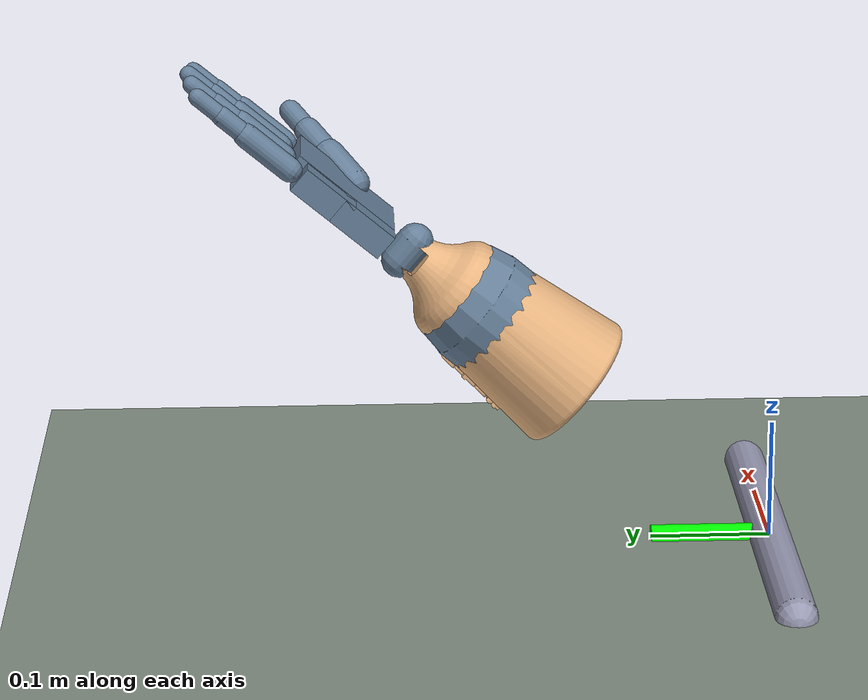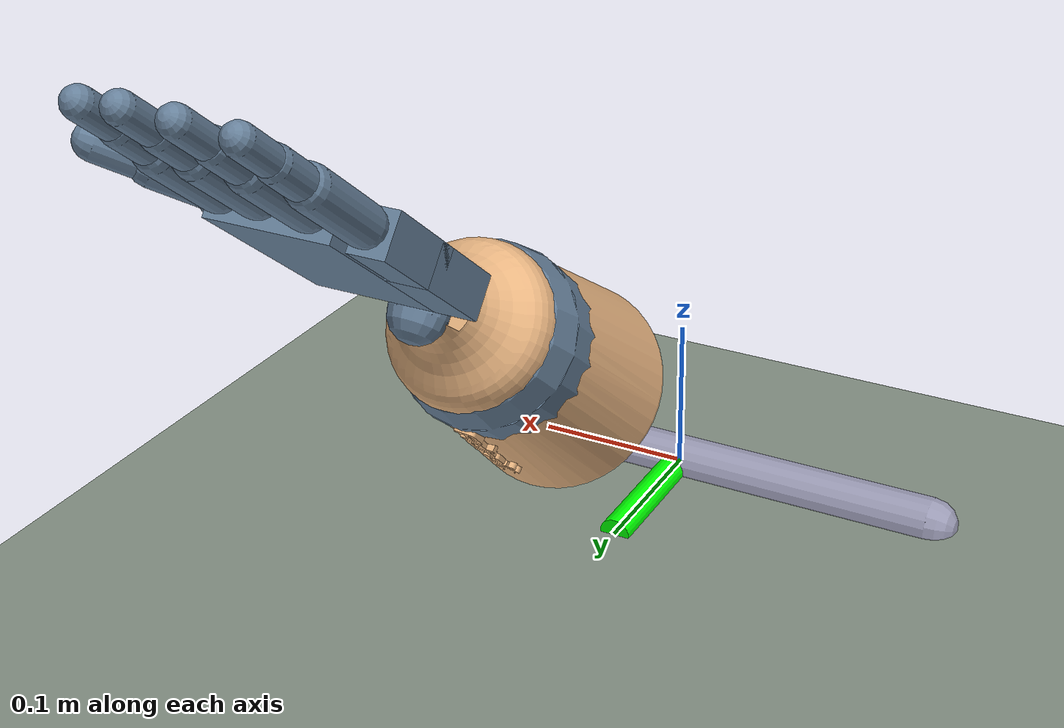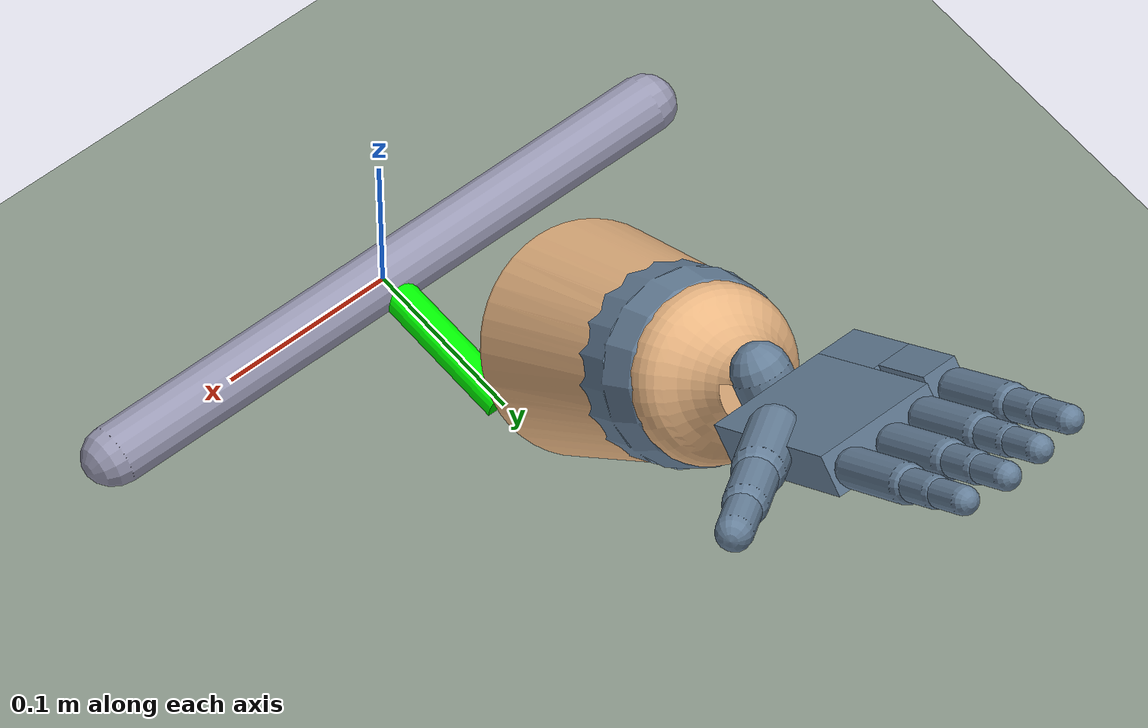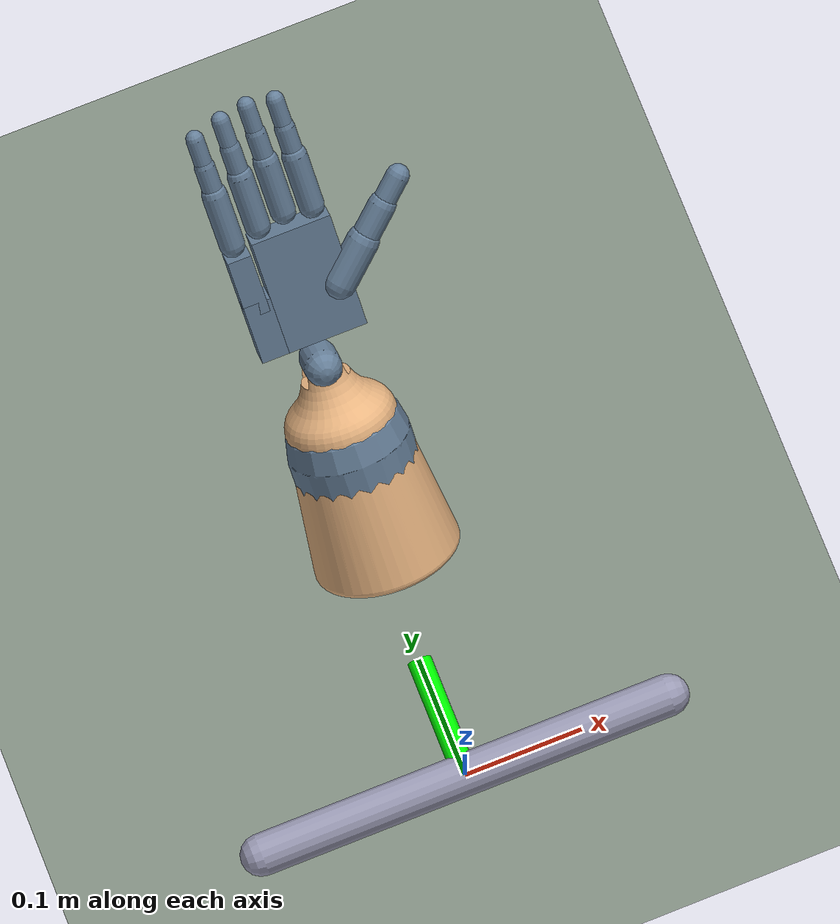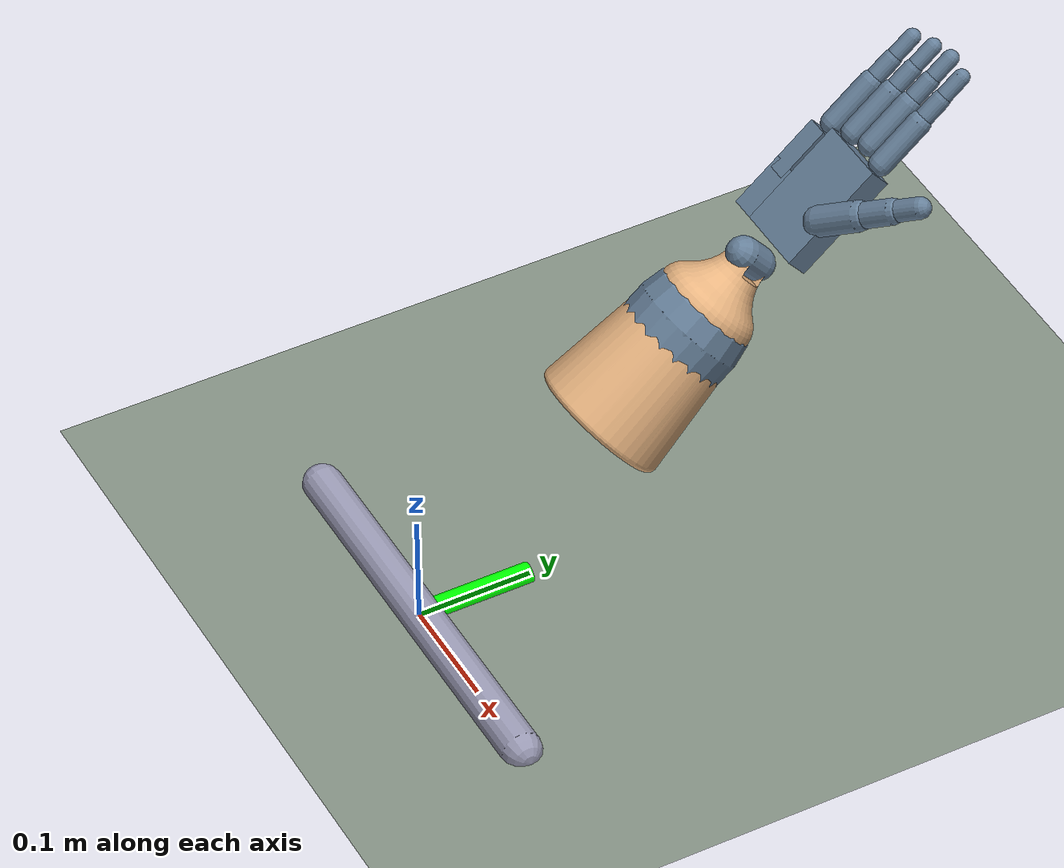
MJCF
<mujoco model="AdroitTwirl-v1.31(Pnuematics)">
	<compiler 	inertiafromgeom="false"
				meshdir ="Meshes/"
				strippath="false"
				coordinate="local"
				angle="radian"/>

	<size 	njmax="400"
			nconmax="100"
			nuser_jnt="1"
			nuser_site="1"
			nuser_tendon="1"
			nuser_actuator="13"
			nstack="600000"/>

	<option	timestep="0.002"
			iterations="20"
			apirate="200">
	</option>

	<asset>
		<mesh file="arm_base.stl"/>
		<mesh file="arm_trunk_asmbly.stl"/>
		<mesh file="upper_arm_asmbl+shoulder.stl"/>
		<mesh file="elbow_flex.stl"/>
		<mesh file="elbow_rotate_muscle.stl"/>
		<mesh name="forearm_muscle" file="forearm_Cy_PlateAsmbly(muscle cone).stl"/>
		<mesh file="forearm_simple.stl"/>
		<mesh file="wrist.stl"/>
		<mesh file="palm.stl"/>
		<mesh file="knuckle.stl"/>
		<mesh file="F3.stl"/>
		<mesh file="F2.stl"/>
		<mesh file="F1.stl"/>
		<mesh file="lfmetacarpal.stl"/>
		<mesh file="TH3_z.stl"/>
		<mesh file="TH2_z.stl"/>
		<mesh file="TH1_z.stl"/>

		<material name="MatColl" specular="1" shininess=".3" reflectance="0.5" rgba=".4 .5 .6 1"/>
		<material name="MatViz" specular="0.75" shininess=".1" reflectance="0.5" rgba="0.9 .7 .5 1"/>
		<material name="MatGnd" specular=".3" shininess=".3" reflectance="0.3" rgba=".5 .55 .5 1"/>
	</asset>

	<custom>
        <text name="cost" data="C:\vikashData\Dropbox\svn\HandRL\mjPne\Adroit_cost.xml" />
    </custom>

	<default>
		<geom friction="1 0.005 0.001" condim="3" margin="0.003" contype="0" conaffinity="0"/>
		<joint limited="true" damping="0.05" armature=".001" margin="0.01" frictional="true" frictionloss="0.001"/>
		<tendon limited="true"/>
		<mesh scale="0.001 0.001 0.001"/>
		<site size="0.005" rgba=".4 .9 .4 1"/>

		<!--Touch geoms-->
		<default class="D_Touch">
			<site type="box" size="0.009 0.004 0.013" pos="0 -.004 .018" rgba=".8 .8 .8 .25" group="2"/>
		</default>

		<!--Collission geoms-->
		<default class="DC_Hand">
			<geom material="MatColl" contype="1" conaffinity="0" group="0"/>
		</default>

		<!--Meshes-->
		<default class="D_Vizual">
			<geom material="MatViz" contype="0" conaffinity="0" group="1" type="mesh"/>
		</default>

		<!--EQUIVALENT JOINT MOTORS-->
		<general ctrllimited="true" ctrlrange="-1 1" dyntype="none" gaintype="fixed" user="0.0 1.0 0.030 .093971070967613 .513477320952826 0.035877578312754 1.235977874629122 8.404091015001519 0.485030592118657 6.042436037292539 1.021871164868839 0.175296791929956 0.121642029266126"/>
	</default>

	<contact>
		<!--Thumb-->
		<pair geom1="C_ffdistal" geom2="C_thdistal" condim="1"/>
		<pair geom1="C_ffmiddle" geom2="C_thdistal" condim="1"/>
		<pair geom1="C_ffproximal" geom2="C_thdistal" condim="1"/>
		<pair geom1="C_mfproximal" geom2="C_thdistal" condim="1"/>
		<pair geom1="C_mfdistal" geom2="C_thdistal" condim="1"/>
		<pair geom1="C_rfdistal" geom2="C_thdistal" condim="1"/>
		<pair geom1="C_lfdistal" geom2="C_thdistal" condim="1"/>
		<pair geom1="C_palm0" geom2="C_thdistal" condim="1"/>

		<!--Distals with Distals-->
		<pair geom1="C_mfdistal" geom2="C_ffdistal" condim="1"/>
		<pair geom1="C_rfdistal" geom2="C_mfdistal" condim="1"/>
		<pair geom1="C_lfdistal" geom2="C_rfdistal" condim="1"/>

		<!--Proximals with Proximals-->
		<pair geom1="C_mfproximal" geom2="C_ffproximal" condim="1"/>
		<pair geom1="C_rfproximal" geom2="C_mfproximal" condim="1"/>
		<pair geom1="C_lfproximal" geom2="C_rfproximal" condim="1"/>

		<!--little finger -->
		<pair geom1="C_lfdistal" geom2="C_rfdistal" condim="1"/>
		<pair geom1="C_lfdistal" geom2="C_mfdistal" condim="1"/>
		<pair geom1="C_lfdistal" geom2="C_rfmiddle" condim="1"/>
		<pair geom1="C_lfmiddle" geom2="C_rfdistal" condim="1"/>
		<pair geom1="C_lfmiddle" geom2="C_rfmiddle" condim="1"/>
	</contact>

	<!-- ======= WORLD ======= -->
    <worldbody>

		<light directional="true" cutoff="4" exponent="20" diffuse=".5 .5 .5" specular="0 0 0" pos=".2 .3 1.5" dir="-.2 -.1 -0.5 "/>

		<!-- ======= Ground ======= -->
		<geom name="ground" type="plane" pos="0 0 0" material="MatGnd" size="1 1 2" contype="1" conaffinity="1"/>
		<geom type="cylinder" fromto="0 0 0 .1 0 0" size="0.01" rgba="1 0 0 1"/>
		<geom type="cylinder" fromto="0 0 0 0 .1 0" size="0.01" rgba="0 1 0 1"/>

		<!-- ======= Base ======= -->

							<body name="forearm" pos="0 0 0" euler="-.87 0 0"> <!--Use this for Adroit-hand model-->
								<inertial pos="0.001 -0.002 0.29" quat="0.982 -0.016 0.000 -0.188" mass="4" diaginertia="0.01 0.01 0.0075" /> <!--Use this for Adroit-hand model-->
								<!--Use this for Adroit-hand model-->
								<geom class="D_Vizual" pos="0 0 .213" name="V_forearm"  mesh="forearm_simple" euler="1.57 0 0"/> <!--Use this for Adroit-hand model-->
								<geom class="DC_Hand" name="C_forearm1" type="capsule" pos="0 0 0.29" size=".05 .033"/> <!--Use this for Adroit-hand model-->

								<!-- ======= Wrist ======= -->
								<body name="wrist" pos="0 0 0.396">
									<inertial pos="0.003 0.000 0.016" quat="0.504 0.496 0.495 0.504" mass="0.3" diaginertia="0.001 0.001 0.001" />
									<joint name="WRJ1" type="hinge" pos="0 0 0" axis="0 1 0" range="-0.00524 0.00175" damping=".5" armature=".005" user="1123"/>
									<geom class="D_Vizual" name="V_wrist" mesh="wrist"/>
									<geom class="DC_Hand" name="C_wrist" type="capsule" pos="0 0 0"  quat=".707 .707 0 0" size=".015 .01"/>

									<!-- ======= Palm ======= -->
									<body name="palm" pos="0 0 0.034">
										<inertial pos="0.006 -0.000 0.036" quat="0.716 0.044 0.075 0.693" mass="0.3" diaginertia="0.001 0.001 0.001" />
										<joint name="WRJ0" type="hinge" pos="0 0 0" axis="1 0 0" range="-0.785 0.611" damping=".5" armature=".005" user="1122"/>
										<geom class="D_Vizual" name="V_palm" mesh="palm"/>
										<geom class="DC_Hand" name="C_palm0" type="box" pos="0.011 0 0.038" size=".032 .0111 .049"/>
										<geom class="DC_Hand" name="C_palm1" type="box" pos="-.032 0 0.014" size=".011 .0111 .025"/>

										<!-- ======= First Finger ======= -->
										<body name="ffknuckle" pos="0.033 0 0.095">
											<inertial pos="-0.000 0.000 0.000" quat="0.520 0.854 0.006 -0.003" mass="0.008" diaginertia="0.00001 0.00001 0.00001"/>
											<joint name="FFJ3" type="hinge" pos="0 0 0" axis="0 1 0" range="-0.436 0.436"  user="1103"/>
											<geom class="D_Vizual" name="V_ffknuckle" mesh="knuckle"/>
											<!--Proximal-->
											<body name="ffproximal" pos="0 0 0">
												<inertial pos="0.000 0.000 0.023" quat="0.707 -0.004 0.004 0.707" mass="0.014" diaginertia="0.00001 0.00001 0.00001"/>
												<joint name="FFJ2" type="hinge" pos="0 0 0" axis="1 0 0" range="0 1.571"  user="1102"/>
												<geom class="D_Vizual" name="V_ffproximal" mesh="F3"/>
												<geom class="DC_Hand" name="C_ffproximal" type="capsule" pos="0 0 .0225" size=".01 .0225"/>
												<!--middle-->
												<body name="ffmiddle" pos="0 0 0.045">
													<inertial pos="-0.000 -0.000 0.011" quat="0.707 0.000 -0.000 0.707" mass="0.012" diaginertia="0.00001 0.00001 0.00001"/>
													<joint name="FFJ1" type="hinge" pos="0 0 0" axis="1 0 0" range="0 1.571"  user="1101"/>
													<geom class="D_Vizual" name="V_ffmiddle" mesh="F2"/>
													<geom class="DC_Hand" name="C_ffmiddle" type="capsule" pos="0 0 .0125" size=".00805 .0125"/>
													<!--distal-->
													<body name="ffdistal" pos="0 0 0.025">
														<inertial pos="0 -0.000 0.015" quat="0.707 -0.003 0.003 0.707" mass="0.010" diaginertia="0.00001 0.00001 0.00001"/>
														<joint name="FFJ0" type="hinge" pos="0 0 0" axis="1 0 0" range="0 1.571"  user="1100"/>
														<geom class="D_Vizual" name="V_ffdistal" pos="0 0 .001" mesh="F1"/>
														<geom class="DC_Hand" name="C_ffdistal" type="capsule" pos="0 0 .012" size=".00705 .012"  condim="4"/>
													</body>
												</body>
											</body>
										</body> <!--First Finger End-->

										<!-- ======= Middle Finger ======= -->
										<body name="mfknuckle" pos="0.011 0 0.099">
											<inertial pos="-0.000 0.000 0.000" quat="0.520 0.854 0.006 -0.003" mass="0.008" diaginertia="0.00001 0.00001 0.00001"/>
											<joint name="MFJ3" type="hinge" pos="0 0 0" axis="0 1 0" range="-0.436 0.436"  user="1107"/>
											<geom class="D_Vizual" name="V_mfknuckle" mesh="knuckle"/>
											<!--Proximal-->
											<body name="mfproximal" pos="0 0 0">
												<inertial pos="0.000 0.000 0.023" quat="0.707 -0.004 0.004 0.707" mass="0.014" diaginertia="0.00001 0.00001 0.00001"/>
												<joint name="MFJ2" type="hinge" pos="0 0 0" axis="1 0 0" range="0 1.571"  user="1106"/>
												<geom class="D_Vizual" name="V_mfproximal" mesh="F3"/>
												<geom class="DC_Hand" name="C_mfproximal" type="capsule" pos="0 0 .0225" size=".01 .0225"/>
												<!--Middle-->
												<body name="mfmiddle" pos="0 0 0.045">
													<inertial pos="-0.000 -0.000 0.012" quat="0.707 0.000 -0.000 0.707" mass="0.012" diaginertia="0.00001 0.00001 0.00001"/>
													<joint name="MFJ1" type="hinge" pos="0 0 0" axis="1 0 0" range="0 1.571"  user="1105"/>
													<geom class="D_Vizual" name="V_mfmiddle" mesh="F2"/>
													<geom class="DC_Hand" name="C_mfmiddle" type="capsule" pos="0 0 .0125" size=".00805 .0125"/>
													<!--Distal-->
													<body name="mfdistal" pos="0 0 0.025">
														<inertial pos="0 -0.000 0.015" quat="0.707 -0.003 0.003 0.707" mass="0.010" diaginertia="0.00001 0.00001 0.00001"/>
														<joint name="MFJ0" type="hinge" pos="0 0 0" axis="1 0 0" range="0 1.571"  user="1104"/>
														<geom class="D_Vizual" name="V_mfdistal" mesh="F1"/>
														<geom class="DC_Hand" name="C_mfdistal" type="capsule" pos="0 0 .012" size=".00705 .012" condim="4"/>
													</body>
												</body>
											</body>
										</body> <!--Middle Finger End-->

										<!-- ======= Ring Finger ======= -->
										<body name="rfknuckle" pos="-0.011 0 0.095">
											<inertial pos="-0.000 0.000 0.000" quat="0.520 0.854 0.006 -0.003" mass="0.008" diaginertia="0.00001 0.00001 0.00001"/>
											<joint name="RFJ3" type="hinge" pos="0 0 0" axis="0 1 0" range="-0.436 0.436"  user="1111"/>
											<geom class="D_Vizual" name="V_rfknuckle" mesh="knuckle"/>
											<!--Proximal-->
											<body name="rfproximal" pos="0 0 0">
												<inertial pos="0.000 0.000 0.023" quat="0.707 -0.004 0.004 0.707" mass="0.014" diaginertia="0.00001 0.00001 0.00001"/>
												<joint name="RFJ2" type="hinge" pos="0 0 0" axis="1 0 0" range="0 1.571"  user="1110"/>
												<geom class="D_Vizual" name="V_rfproximal" mesh="F3"/>
												<geom class="DC_Hand" name="C_rfproximal" type="capsule" pos="0 0 .0225" size=".01 .0225"/>
												<!--Middle-->
												<body name="rfmiddle" pos="0 0 0.045">
													<inertial pos="-0.000 -0.000 0.012" quat="0.707 0.000 -0.000 0.707" mass="0.012" diaginertia="0.00001 0.00001 0.00001"/>
													<joint name="RFJ1" type="hinge" pos="0 0 0" axis="1 0 0" range="0 1.571"  user="1109"/>
													<geom class="D_Vizual" name="V_rfmiddle" mesh="F2"/>
													<geom class="DC_Hand" name="C_rfmiddle" type="capsule" pos="0 0 .0125" size=".00805 .0125"/>
													<!--Distal-->
													<body name="rfdistal" pos="0 0 0.025">
														<inertial pos="0 -0.000 0.015" quat="0.707 -0.003 0.003 0.707" mass="0.010" diaginertia="0.00001 0.00001 0.00001"/>
														<joint name="RFJ0" type="hinge" pos="0 0 0" axis="1 0 0" range="0 1.571"  user="1108"/>
														<geom class="D_Vizual" name="V_rfdistal" mesh="F1" pos="0 0 .001"/>
														<geom class="DC_Hand" name="C_rfdistal" type="capsule" pos="0 0 .012" size=".00705 .012" condim="4"/>
													</body>
												</body>
											</body>
										</body> <!--Ring Finger End-->

										<!-- ======= Little Finger ======= -->
										<body name="lfmetacarpal" pos="-0.017 0 0.044">
											<inertial pos="-0.014 0.001 0.014" quat="0.709 -0.092 -0.063 0.696" mass="0.075" diaginertia="0.00001 0.00001 0.00001"/>
											<joint name="LFJ4" type="hinge" pos="0 0 0" axis="0.571 0 0.821" range="0 0.698"  user="1116"/>
											<geom class="D_Vizual" name="V_lfmetacarpal" pos="-0.016 0.000 -0.023" mesh="lfmetacarpal"/>
											<geom class="DC_Hand" name="C_lfmetacarpal" type="box" pos="-.0165 0 0.01" size=".0095 .0111 .025"/>
											<!--Knuckle-->
											<body name="lfknuckle" pos="-0.017 0 0.044">
												<inertial pos="-0.000 0.000 0.000" quat="0.520 0.854 0.006 -0.003" mass="0.008" diaginertia="0.00001 0.00001 0.00001"/>
												<joint name="LFJ3" type="hinge" pos="0 0 0" axis="0 1 0" range="-0.436 0.436"  user="1115"/>
												<geom class="D_Vizual" name="V_lfknuckle" mesh="knuckle"/>
												<!--Proximal-->
												<body name="lfproximal" pos="0 0 0">
													<inertial pos="0.000 0.000 0.023" quat="0.707 -0.004 0.004 0.707" mass="0.014" diaginertia="0.00001 0.00001 0.00001"/>
													<joint name="LFJ2" type="hinge" pos="0 0 0" axis="1 0 0" range="0 1.571"  user="1114"/>
													<geom class="D_Vizual" name="V_lfproximal" mesh="F3"/>
													<geom class="DC_Hand" name="C_lfproximal" type="capsule" pos="0 0 .0225" size=".01 .0225"/>
													<!--Middle-->
													<body name="lfmiddle" pos="0 0 0.045">
														<inertial pos="-0.000 -0.000 0.012" quat="0.707 0.000 -0.000 0.707" mass="0.012" diaginertia="0.00001 0.00001 0.00001"/>
														<joint name="LFJ1" type="hinge" pos="0 0 0" axis="1 0 0" range="0 1.571"  user="1113"/>
														<geom class="D_Vizual" name="V_lfmiddle" mesh="F2"/>
														<geom class="DC_Hand" name="C_lfmiddle" type="capsule" pos="0 0 .0125" size=".00805 .0125"/>
														<!--Distal-->
														<body name="lfdistal" pos="0 0 0.025">
															<inertial pos="0 -0.000 0.015" quat="0.707 -0.003 0.003 0.707" mass="0.010" diaginertia="0.00001 0.00001 0.00001"/>
															<joint name="LFJ0" type="hinge" pos="0 0 0" axis="1 0 0" range="0 1.571"  user="1112"/>
															<geom class="D_Vizual" name="V_lfdistal" mesh="F1" pos="0 0 .001"/>
															<geom class="DC_Hand" name="C_lfdistal" type="capsule" pos="0 0 .012" size=".00705 .012" condim="4"/>
														</body>
													</body>
												</body>
											</body>
										</body> <!--Little Finger End-->

										<!-- ======= Thumb Finger ======= -->
										<body name="thbase" pos="0.034 -0.009 0.029" axisangle="0  1 0  0.785" >
											<inertial pos="0 0 0" mass="0.010" diaginertia="0.00001 0.00001 0.00001"/>
											<joint name="THJ4" type="hinge" pos="0 0 0" axis="0 0 -1" range="-1.047 1.047"  user="1121"/>
											<geom name="V_thbase" type="box" group="1" pos="0 0 0" size="0.001 0.001 0.001" />
											<!--Proximal-->
											<body name="thproximal" pos="0 0 0">
												<inertial pos="-0.000 -0.000 0.017" quat="0.982 -0.000 0.001 0.191" mass="0.016" diaginertia="0.00001 0.00001 0.00001"/>
												<joint name="THJ3" type="hinge" pos="0 0 0" axis="1 0 0" range="0 1.309"  user="1120"/>
												<geom class="D_Vizual" name="V_thproximal" mesh="TH3_z"/>
												<geom class="DC_Hand" name="C_thproximal" type="capsule" pos="0 0 .019" size=".013 .019"/>
												<!--Hub-->
												<body name="thhub" pos="0 0 0.038">
													<inertial pos="0 0 0" mass="0.002" diaginertia="0.00001 0.00001 0.00001"/>
													<joint name="THJ2" type="hinge" pos="0 0 0" axis="1 0 0" range="-0.262 0.262"  user="1119"/>
													<geom name="V_thhub" type="box" group="1" pos="0 0 0" size="0.001 0.001 0.001"/>
													<!--Middle-->
													<body name="thmiddle" pos="0 0 0">
														<inertial pos="0.000 -0.000 0.016" quat="1.000 -0.001 -0.007 0.003" mass="0.016" diaginertia="0.00001 0.00001 0.00001"/>
														<joint name="THJ1" type="hinge" pos="0 0 0" axis="0 1 0" range="-0.524 0.524"  user="1118"/>
														<geom class="D_Vizual" name="V_thmiddle" mesh="TH2_z"/>
														<geom class="DC_Hand" name="C_thmiddle" type="capsule" pos="0 0 .016" size=".011 .016"/>
														<!--Distal-->
														<body name="thdistal" pos="0 0 0.032">
															<inertial pos="0.000 -0.000 0.016" quat="0.999 -0.005 -0.047 0.005" mass="0.016" diaginertia="0.00001 0.00001 0.00001"/>
															<joint name="THJ0" type="hinge" pos="0 0 0" axis="0 1 0" range="-1.571 0"  user="1117"/>
															<geom class="D_Vizual" name="V_thdistal" mesh="TH1_z"/>
															<geom class="DC_Hand" name="C_thdistal" type="capsule" pos="0 0 .013" size=".00918 .013" condim="4"/>
															<site name="S_thtip" 	pos="0.000 0 0.0275" group="1"/>
														</body>
													</body>
												</body>
											</body>
										</body> <!--Thumb Finger End-->
									</body> <!--Palm Ends-->
								</body> <!--Wrist Ends-->
							</body> <!--Forearm/ Hand Actuation Ends-->

		<body name="pen" pos="0 0 0" euler="0 0 0">
			<!--  OBJECTS -->
			<inertial pos="0 0 0" quat="0.707388 0 0.706825 0" mass="0.176788" diaginertia="0.00200323 0.00200323 2.70707e-05" />
			<geom name="C_bottle"  type="capsule" group="1" size="0.0175 0.175"  rgba=".6 .6 .7 1" contype="0" conaffinity="1" pos="0 0 0" euler="0 1.57 0"/>
			<geom name="C_bottleZ"  type="capsule" group="3" size="0.005 0.015"  rgba="0.5 0.5 0.6 1" contype="0" conaffinity="0" pos="-.175 0 0.02" euler="0 0 0"/>

			<joint name="JbottleTX" type="slide" axis="1 0 0" pos="0 0 0" limited="false" damping="0.0001" armature="0"/>
			<joint name="JbottleTY" type="slide" axis="0 1 0" pos="0 0 0" limited="false" damping="0.0001" armature="0"/>
			<joint name="JbottleTZ" type="slide" axis="0 0 1" pos="0 0 0" limited="false" damping="0.0001" armature="0"/>

			<joint name="JbottleRX" type="hinge" axis="1 0 0" pos="0 0 0" limited="false" damping="0.0001" armature="0"/>
			<joint name="JbottleRY" type="hinge" axis="0 1 0" pos="0 0 0" limited="false" damping="0.0001" armature="0"/>
			<joint name="JbottleRZ" type="hinge" axis="0 0 1" pos="0 0 0" limited="false" damping="0.0001" armature="0"/>

			<site name="bottle_handle" pos="0 0 0" group="2" euler="0 0 0"/>
		</body>

    </worldbody>

	<tendon>
		<!-- ======= Arm ======= -->

		<!-- ======= Wrist ======= -->
		<fixed name="T_WRJ1r" range="-.032 0.032" user="1236">
			<joint joint="WRJ1"  coef="0.018"/>
		</fixed>
		<fixed name="T_WRJ1l" range="-.032 0.032" user="1237">
			<joint joint="WRJ1"  coef="-0.018"/>
		</fixed>

		<fixed name="T_WRJ0u" range="-.032 0.032" user="1236">
			<joint joint="WRJ0"  coef="0.018"/>
		</fixed>
		<fixed name="T_WRJ0d" range="-.032 0.032" user="1237">
			<joint joint="WRJ0"  coef="-0.018"/>
		</fixed>

		<!-- ======= First Finger ======= -->
		<fixed name="T_FFJ3r" range="-0.018 0.018" user="1204">
			<joint joint="FFJ3"  coef="0.010"/>
		</fixed>
		<fixed name="T_FFJ3l" range="-0.018 0.018" user="1205">
			<joint joint="FFJ3"  coef="-0.010"/>
		</fixed>
		<fixed name="T_FFJ2u" range="-0.007 0.030" user="1202">
			<joint joint="FFJ2"  coef="0.010"/>
		</fixed>
		<fixed name="T_FFJ2d" range="-0.030 0.007" user="1203">
			<joint joint="FFJ2"  coef="-0.010"/>
		</fixed>
		<!--coupler tendon-->
		<fixed name="T_FFJ1c" range ="-0.0010 0.0010">
			<joint joint="FFJ0"  coef="0.00705"/>
			<joint joint="FFJ1"  coef="-0.00805"/>
		</fixed>
		<fixed name="T_FFJ1u" range="-0.007 0.030" user="1200">
			<joint joint="FFJ0"  coef="0.00705"/>
			<joint joint="FFJ1"  coef="0.00805"/>
		</fixed>
		<fixed name="T_FFJ1d" range="-0.030 0.007" user="1201">
			<joint joint="FFJ0"  coef="-0.00705"/>
			<joint joint="FFJ1"  coef="-0.00805"/>
		</fixed>

		<!-- ======= Middle Finger ======= -->
		<fixed name="T_MFJ3r" range="-0.018 0.018" user="1210">
			<joint joint="MFJ3"  coef="0.010"/>
		</fixed>
		<fixed name="T_MFJ3l" range="-0.018 0.018" user="1211">
			<joint joint="MFJ3"  coef="-0.010"/>
		</fixed>
		<fixed name="T_MFJ2u" range="-0.007 0.030" user="1208">
			<joint joint="MFJ2"  coef="0.010"/>
		</fixed>
		<fixed name="T_MFJ2d" range="-0.030 0.007" user="1209">
			<joint joint="MFJ2"  coef="-0.010"/>
		</fixed>
		<!--coupler tendon-->
		<fixed name="T_MFJ1c" range ="-0.001 0.001">
			<joint joint="MFJ0"  coef="0.00705"/>
			<joint joint="MFJ1"  coef="-0.00805"/>
		</fixed>
		<fixed name="T_MFJ1u" range="-0.007 0.030" user="1206">
			<joint joint="MFJ0"  coef="0.00705"/>
			<joint joint="MFJ1"  coef="0.00805"/>
		</fixed>
		<fixed name="T_MFJ1d" range="-0.030 0.007" user="1207">
			<joint joint="MFJ0"  coef="-0.00705"/>
			<joint joint="MFJ1"  coef="-0.00805"/>
		</fixed>

		<!-- ======= Ring Finger ======= -->
		<fixed name="T_RFJ3r" range="-0.018 0.018" user="1216">
			<joint joint="RFJ3"  coef="0.010"/>
		</fixed>
		<fixed name="T_RFJ3l" range="-0.018 0.018" user="1217">
			<joint joint="RFJ3"  coef="-0.010"/>
		</fixed>
		<fixed name="T_RFJ2u" range="-0.007 0.030" user="1214">
			<joint joint="RFJ2"  coef="0.010"/>
		</fixed>
		<fixed name="T_RFJ2d" range="-0.030 0.007" user="1215">
			<joint joint="RFJ2"  coef="-0.010"/>
		</fixed>
		<!--coupler tendon-->
		<fixed name="T_RFJ1c" range ="-0.001 0.001">
			<joint joint="RFJ0"  coef="0.00705"/>
			<joint joint="RFJ1"  coef="-0.00805"/>
		</fixed>
		<fixed name="T_RFJ1u" range="-0.007 0.030" user="1212">
			<joint joint="RFJ0"  coef="0.00705"/>
			<joint joint="RFJ1"  coef="0.00805"/>
		</fixed>
		<fixed name="T_RFJ1d" range="-0.030 0.007" user="1213">
			<joint joint="RFJ0"  coef="-0.00705"/>
			<joint joint="RFJ1"  coef="-0.00805"/>
		</fixed>

		<!-- ======= Little Finger ======= -->
		<fixed name="T_LFJ4u" range="-0.007 0.030" user="1224">
			<joint joint="LFJ4"  coef="0.010"/>
		</fixed>
		<fixed name="T_LFJ4d" range="-0.030 0.007" user="1225">
			<joint joint="LFJ4"  coef="-0.010"/>
		</fixed>
		<fixed name="T_LFJ3r" range="-0.018 0.018" user="1222">
			<joint joint="LFJ3"  coef="0.010"/>
		</fixed>
		<fixed name="T_LFJ3l" range="-0.018 0.018" user="1223">
			<joint joint="LFJ3"  coef="-0.010"/>
		</fixed>
		<fixed name="T_LFJ2u" range="-0.007 0.030" user="1220">
			<joint joint="LFJ2"  coef="0.010"/>
		</fixed>
		<fixed name="T_LFJ2d" range="-0.030 0.007" user="1221">
			<joint joint="LFJ2"  coef="-0.010"/>
		</fixed>
		<!--coupler tendon-->
		<fixed name="T_LFJ1c" range ="-0.001 0.001">
			<joint joint="LFJ0"  coef="0.00705"/>
			<joint joint="LFJ1"  coef="-0.00805"/>
		</fixed>
		<fixed name="T_LFJ1u" range="-0.007 0.030" user="1218">
			<joint joint="LFJ0"  coef="0.00705"/>
			<joint joint="LFJ1"  coef="0.00805"/>
		</fixed>
		<fixed name="T_LFJ1d" range="-0.030 0.007" user="1219">
			<joint joint="LFJ0"  coef="-0.00705"/>
			<joint joint="LFJ1"  coef="-0.00805"/>
		</fixed>

		<!-- ======= Thumb Finger ======= -->
		<fixed name="T_THJ4a" range="-0.018 0.018" user="1234">
			<joint joint="THJ4"  coef="0.01636"/>
		</fixed>
		<fixed name="T_THJ4c" range="-0.018 0.018" user="1235">
			<joint joint="THJ4"  coef="-0.01636"/>
		</fixed>
		<fixed name="T_THJ3u" range="-0.007 0.030" user="1232">
			<joint joint="THJ3"  coef="0.010"/>
		</fixed>
		<fixed name="T_THJ3d" range="-0.030 0.007" user="1233">
			<joint joint="THJ3"  coef="-0.010"/>
		</fixed>
		<fixed name="T_THJ2u" range="-0.018 0.018" user="1230">
			<joint joint="THJ2"  coef="0.011"/>
		</fixed>
		<fixed name="T_THJ2d" range="-0.018 0.018" user="1231">
			<joint joint="THJ2"  coef="-0.011"/>
		</fixed>
		<fixed name="T_THJ1r" range="-0.018 0.018" user="1228">
			<joint joint="THJ1"  coef="0.011"/>
		</fixed>
		<fixed name="T_THJ1l" range="-0.018 0.018" user="1229">
			<joint joint="THJ1"  coef="-0.011"/>
		</fixed>
		<fixed name="T_THJ0r" range="-0.030 0.007" user="1226">
			<joint joint="THJ0"  coef="0.009"/>
		</fixed>
		<fixed name="T_THJ0l" range="-0.007 0.030" user="1227">
			<joint joint="THJ0"  coef="-0.009"/>
		</fixed>
    </tendon>

	<actuator> <!-- NOTE: Use Joint Actuator Force Sensors -->
	<!-- ================ EQUIVALENT POSITION MOTORS ====================== -->

	<general name="A_WRJ1r" tendon="T_WRJ1r" dyntype="user" gainprm="-198.0"  ctrlrange="-1 1"/>
	<general name="A_WRJ1l" tendon="T_WRJ1l" dyntype="user" gainprm="-198.0"  ctrlrange="-1 1"/>
	<general name="A_WRJ0u" tendon="T_WRJ0u" dyntype="user" gainprm="-198.0"  ctrlrange="-1 1"/>
	<general name="A_WRJ0d" tendon="T_WRJ0d" dyntype="user" gainprm="-198.0"  ctrlrange="-1 1"/>

	<general name="A_FFJ3r" tendon="T_FFJ3r" dyntype="user" gainprm="-67.7"   ctrlrange="-1 1"/>
	<general name="A_FFJ3l" tendon="T_FFJ3l" dyntype="user" gainprm="-67.7"   ctrlrange="-1 1"/>
	<general name="A_FFJ2u" tendon="T_FFJ2u" dyntype="user" gainprm="-67.7"   ctrlrange="-1 1"/>
	<general name="A_FFJ2d" tendon="T_FFJ2d" dyntype="user" gainprm="-67.7"   ctrlrange="-1 1"/>
	<general name="A_FFJ1u" tendon="T_FFJ1u" dyntype="user" gainprm="-67.7"   ctrlrange="-1 1"/>
	<general name="A_FFJ1d" tendon="T_FFJ1d" dyntype="user" gainprm="-67.7"   ctrlrange="-1 1"/>

	<general name="A_MFJ3r" tendon="T_MFJ3r" dyntype="user" gainprm="-67.7"   ctrlrange="-1 1"/>
	<general name="A_MFJ3l" tendon="T_MFJ3l" dyntype="user" gainprm="-67.7"   ctrlrange="-1 1"/>
	<general name="A_MFJ2u" tendon="T_MFJ2u" dyntype="user" gainprm="-67.7"   ctrlrange="-1 1"/>
	<general name="A_MFJ2d" tendon="T_MFJ2d" dyntype="user" gainprm="-67.7"   ctrlrange="-1 1"/>
	<general name="A_MFJ1u" tendon="T_MFJ1u" dyntype="user" gainprm="-67.7"   ctrlrange="-1 1"/>
	<general name="A_MFJ1d" tendon="T_MFJ1d" dyntype="user" gainprm="-67.7"   ctrlrange="-1 1"/>

	<general name="A_RFJ3r" tendon="T_RFJ3r" dyntype="user" gainprm="-67.7"   ctrlrange="-1 1"/>
	<general name="A_RFJ3l" tendon="T_RFJ3l" dyntype="user" gainprm="-67.7"   ctrlrange="-1 1"/>
	<general name="A_RFJ2u" tendon="T_RFJ2u" dyntype="user" gainprm="-67.7"   ctrlrange="-1 1"/>
	<general name="A_RFJ2d" tendon="T_RFJ2d" dyntype="user" gainprm="-67.7"   ctrlrange="-1 1"/>
	<general name="A_RFJ1u" tendon="T_RFJ1u" dyntype="user" gainprm="-67.7"   ctrlrange="-1 1"/>
	<general name="A_RFJ1d" tendon="T_RFJ1d" dyntype="user" gainprm="-67.7"   ctrlrange="-1 1"/>

	<general name="A_LFJ4u" tendon="T_LFJ4u" dyntype="user" gainprm="-67.7"   ctrlrange="-1 1"/>
	<general name="A_LFJ4d" tendon="T_LFJ4d" dyntype="user" gainprm="-67.7"   ctrlrange="-1 1"/>
	<general name="A_LFJ3r" tendon="T_LFJ3r" dyntype="user" gainprm="-67.7"   ctrlrange="-1 1"/>
	<general name="A_LFJ3l" tendon="T_LFJ3l" dyntype="user" gainprm="-67.7"   ctrlrange="-1 1"/>
	<general name="A_LFJ2u" tendon="T_LFJ2u" dyntype="user" gainprm="-67.7"   ctrlrange="-1 1"/>
	<general name="A_LFJ2d" tendon="T_LFJ2d" dyntype="user" gainprm="-67.7"   ctrlrange="-1 1"/>
	<general name="A_LFJ1u" tendon="T_LFJ1u" dyntype="user" gainprm="-67.7"   ctrlrange="-1 1"/>
	<general name="A_LFJ1d" tendon="T_LFJ1d" dyntype="user" gainprm="-67.7"   ctrlrange="-1 1"/>

	<general name="A_THJ4a" tendon="T_THJ4a" dyntype="user" gainprm="-67.7"   ctrlrange="-1 1"/>
	<general name="A_THJ4c" tendon="T_THJ4c" dyntype="user" gainprm="-67.7"   ctrlrange="-1 1"/>
	<general name="A_THJ3u" tendon="T_THJ3u" dyntype="user" gainprm="-67.7"   ctrlrange="-1 1"/>
	<general name="A_THJ3d" tendon="T_THJ3d" dyntype="user" gainprm="-67.7"   ctrlrange="-1 1"/>
	<general name="A_THJ2u" tendon="T_THJ2u" dyntype="user" gainprm="-67.7"   ctrlrange="-1 1"/>
	<general name="A_THJ2d" tendon="T_THJ2d" dyntype="user" gainprm="-67.7"   ctrlrange="-1 1"/>
	<general name="A_THJ1r" tendon="T_THJ1r" dyntype="user" gainprm="-67.7"   ctrlrange="-1 1"/>
	<general name="A_THJ1l" tendon="T_THJ1l" dyntype="user" gainprm="-67.7"   ctrlrange="-1 1"/>
	<general name="A_THJ0r" tendon="T_THJ0r" dyntype="user" gainprm="-67.7"   ctrlrange="-1 1"/>
	<general name="A_THJ0l" tendon="T_THJ0l" dyntype="user" gainprm="-67.7"   ctrlrange="-1 1"/>
</actuator>

	<sensor>

		<!-- ======= Tendon Actuator Force Sensors ======= -->

		<!-- ======= Touch Sensors ======= -->

		<!-- ======= Joint Sensors ======= -->

		<jointpos name="Sjp_WRJ1"	joint="WRJ1"/>
		<jointpos name="Sjp_WRJ0"	joint="WRJ0"/>

		<jointpos name="Sjp_FFJ3"	joint="FFJ3"/>
		<jointpos name="Sjp_FFJ2"	joint="FFJ2"/>
		<jointpos name="Sjp_FFJ1"	joint="FFJ1"/>
		<jointpos name="Sjp_FFJ0"	joint="FFJ0"/>

		<jointpos name="Sjp_MFJ3"	joint="MFJ3"/>
		<jointpos name="Sjp_MFJ2"	joint="MFJ2"/>
		<jointpos name="Sjp_MFJ1"	joint="MFJ1"/>
		<jointpos name="Sjp_MFJ0"	joint="MFJ0"/>

		<jointpos name="Sjp_RFJ3"	joint="RFJ3"/>
		<jointpos name="Sjp_RFJ2"	joint="RFJ2"/>
		<jointpos name="Sjp_RFJ1"	joint="RFJ1"/>
		<jointpos name="Sjp_RFJ0"	joint="RFJ0"/>

		<jointpos name="Sjp_LFJ4"	joint="LFJ4"/>
		<jointpos name="Sjp_LFJ3"	joint="LFJ3"/>
		<jointpos name="Sjp_LFJ2"	joint="LFJ2"/>
		<jointpos name="Sjp_LFJ1"	joint="LFJ1"/>
		<jointpos name="Sjp_LFJ0"	joint="LFJ0"/>

		<jointpos name="Sjp_THJ4"	joint="THJ4"/>
		<jointpos name="Sjp_THJ3"	joint="THJ3"/>
		<jointpos name="Sjp_THJ2"	joint="THJ2"/>
		<jointpos name="Sjp_THJ1"	joint="THJ1"/>
		<jointpos name="Sjp_THJ0"	joint="THJ0"/>

		<!-- ======= Tendon Length Sensors ======= -->

		<tendonpos name="Stp_T_WRJ1r"	tendon="T_WRJ1r"/>
		<tendonpos name="Stp_T_WRJ1l"	tendon="T_WRJ1l"/>
		<tendonpos name="Stp_T_WRJ0d"	tendon="T_WRJ0d"/>
		<tendonpos name="Stp_T_WRJ0u"	tendon="T_WRJ0u"/>

		<tendonpos name="Stp_T_FFJ3l"	tendon="T_FFJ3l"/>
		<tendonpos name="Stp_T_FFJ3r"	tendon="T_FFJ3r"/>
		<tendonpos name="Stp_T_FFJ2u"	tendon="T_FFJ2u"/>
		<tendonpos name="Stp_T_FFJ2d"	tendon="T_FFJ2d"/>
		<tendonpos name="Stp_T_FFJ1u"	tendon="T_FFJ1u"/>
		<tendonpos name="Stp_T_FFJ1d"	tendon="T_FFJ1d"/>

		<tendonpos name="Stp_T_MFJ3l"	tendon="T_MFJ3l"/>
		<tendonpos name="Stp_T_MFJ3r"	tendon="T_MFJ3r"/>
		<tendonpos name="Stp_T_MFJ2u"	tendon="T_MFJ2u"/>
		<tendonpos name="Stp_T_MFJ2d"	tendon="T_MFJ2d"/>
		<tendonpos name="Stp_T_MFJ1u"	tendon="T_MFJ1u"/>
		<tendonpos name="Stp_T_MFJ1d"	tendon="T_MFJ1d"/>

		<tendonpos name="Stp_T_RFJ3l"	tendon="T_RFJ3l"/>
		<tendonpos name="Stp_T_RFJ3r"	tendon="T_RFJ3r"/>
		<tendonpos name="Stp_T_RFJ2u"	tendon="T_RFJ2u"/>
		<tendonpos name="Stp_T_RFJ2d"	tendon="T_RFJ2d"/>
		<tendonpos name="Stp_T_RFJ1u"	tendon="T_RFJ1u"/>
		<tendonpos name="Stp_T_RFJ1d"	tendon="T_RFJ1d"/>

		<tendonpos name="Stp_T_LFJ4u"	tendon="T_LFJ4u"/>
		<tendonpos name="Stp_T_LFJ4d"	tendon="T_LFJ4d"/>
		<tendonpos name="Stp_T_LFJ3l"	tendon="T_LFJ3l"/>
		<tendonpos name="Stp_T_LFJ3r"	tendon="T_LFJ3r"/>
		<tendonpos name="Stp_T_LFJ2u"	tendon="T_LFJ2u"/>
		<tendonpos name="Stp_T_LFJ2d"	tendon="T_LFJ2d"/>
		<tendonpos name="Stp_T_LFJ1u"	tendon="T_LFJ1u"/>
		<tendonpos name="Stp_T_LFJ1d"	tendon="T_LFJ1d"/>

		<tendonpos name="Stp_T_THJ4a"	tendon="T_THJ4a"/>
		<tendonpos name="Stp_T_THJ4c"	tendon="T_THJ4c"/>
		<tendonpos name="Stp_T_THJ3u"	tendon="T_THJ3u"/>
		<tendonpos name="Stp_T_THJ3d"	tendon="T_THJ3d"/>
		<tendonpos name="Stp_T_THJ2u"	tendon="T_THJ2u"/>
		<tendonpos name="Stp_T_THJ2d"	tendon="T_THJ2d"/>
		<tendonpos name="Stp_T_THJ1l"	tendon="T_THJ1l"/>
		<tendonpos name="Stp_T_THJ1r"	tendon="T_THJ1r"/>
		<tendonpos name="Stp_T_THJ0l"	tendon="T_THJ0l"/>
		<tendonpos name="Stp_T_THJ0r"	tendon="T_THJ0r"/>
	</sensor>
</mujoco>
